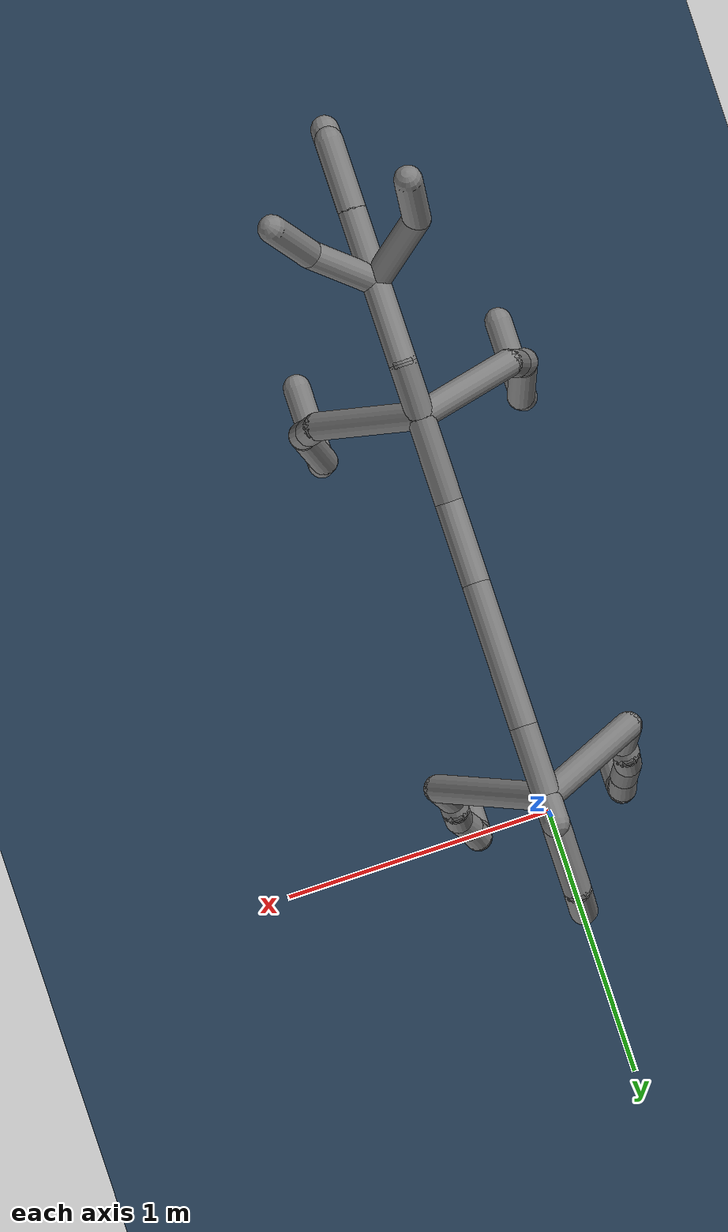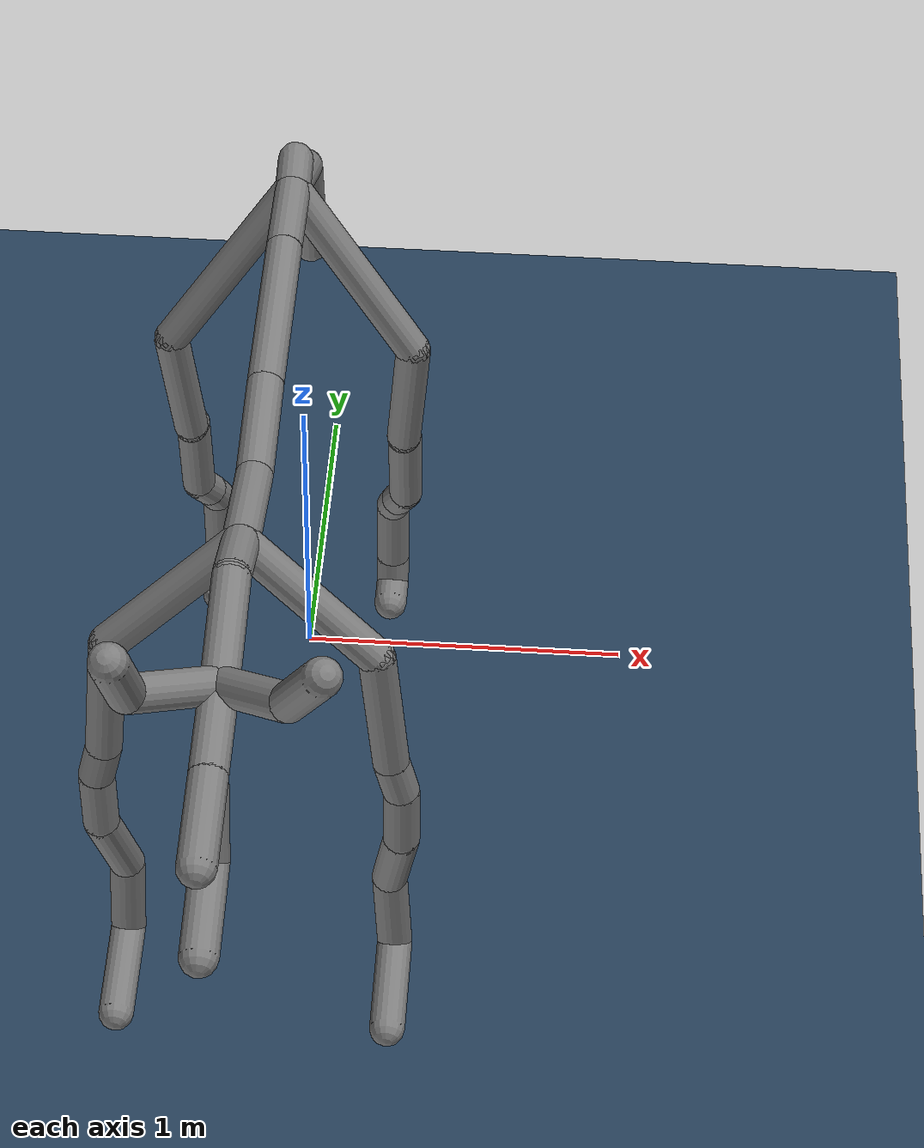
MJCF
<mujoco>
  <compiler meshdir="./mesh"/>
  <default>
    <motor ctrlrange="-1 1" ctrllimited="true"/>
    <joint type="hinge" axis="0 1 0" limited="true" damping=".05" armature=".2"/>
  </default>

  <worldbody>
    <camera name="cam0" pos="0 -7.5 3" xyaxes="1 0 0 0 0.3 1" mode="trackcom"/>
    <camera name="back" pos="-6 -1.5 2" xyaxes="0 -1 0 .5 0 2" mode="trackcom"/>
    <geom name="floor" size="0 0 .05" type="plane" material="grid" condim="3"/>
    <body name="Root" pos="0 0 2">
    <joint type="free"/>
      <geom type="capsule" name="Root geom" size="0.05" fromto="0 0 0 3.085051503148861e-08 -0.09467959403991699 -0.02700936794281006"/>
      <body name="Back" pos="3.085051503148861e-08 -0.09467959403991699 -0.02700936794281006">
        <geom type="capsule" name="Back geom" size="0.05" fromto="0 0 0 -1.1138939726151875e-07 0.34185147285461426 -0.19718897342681885"/>
        <body name="Tail" pos="-1.1138939726151875e-07 0.34185147285461426 -0.19718897342681885">
          <geom type="capsule" name="Tail geom" size="0.05" fromto="0 0 0 -2.9391060252237367e-08 0.09020018577575684 -0.3842000961303711"/>
        </body>
      </body>
      <body name="Back.001" pos="3.085051503148861e-08 -0.09467959403991699 -0.02700936794281006">
        <geom type="capsule" name="Back.001 geom" size="0.05" fromto="0 0 0 8.31115158916873e-08 -0.2550674378871918 0.0"/>
        <body name="Back.002" pos="8.31115158916873e-08 -0.2550674378871918 0.0">
          <geom type="capsule" name="Back.002 geom" size="0.05" fromto="0 0 0 1.6791362611456861e-07 -0.5153231620788574 -0.030207514762878418"/>
          <body name="Back.003" pos="1.6791362611456861e-07 -0.5153231620788574 -0.030207514762878418">
            <geom type="capsule" name="Back.003 geom" size="0.05" fromto="0 0 0 9.747995477482618e-08 -0.29916396737098694 -0.046318650245666504"/>
            <body name="Back.004" pos="9.747995477482618e-08 -0.29916396737098694 -0.046318650245666504">
              <geom type="capsule" name="Back.004 geom" size="0.05" fromto="0 0 0 1.0153232210541319e-07 -0.31160008907318115 0.07149171829223633"/>
              <body name="Neck" pos="1.0153232210541319e-07 -0.31160008907318115 0.07149171829223633">
                <geom type="capsule" name="Neck geom" size="0.05" fromto="0 0 0 6.131017471489031e-08 -0.18815964460372925 0.07149147987365723"/>
                <body name="Neck.001" pos="6.131017471489031e-08 -0.18815964460372925 0.07149147987365723">
                  <geom type="capsule" name="Neck.001 geom" size="0.05" fromto="0 0 0 9.759648378349084e-08 -0.29952114820480347 -0.07249855995178223"/>
                  <body name="Head" pos="9.759648378349084e-08 -0.29952114820480347 -0.07249855995178223">
                    <geom type="capsule" name="Head geom" size="0.05" fromto="0 0 0 8.355840463991626e-08 -0.25643885135650635 -0.03624916076660156"/>
                    <body name="Head.001" pos="8.355840463991626e-08 -0.25643885135650635 -0.03624916076660156">
                      <geom type="capsule" name="Head.001 geom" size="0.05" fromto="0 0 0 8.370631121579208e-08 -0.2568931579589844 -0.03287529945373535"/>
                    </body>
                    <body name="Jaw" pos="8.355840463991626e-08 -0.25643885135650635 -0.03624916076660156">
                      <geom type="capsule" name="Jaw geom" size="0.05" fromto="0 0 0 1.9439994503045455e-08 -0.0596613883972168 -0.2517307996749878"/>
                      <body name="Mouth" pos="1.9439994503045455e-08 -0.0596613883972168 -0.2517307996749878">
                        <geom type="capsule" name="Mouth geom" size="0.05" fromto="0 0 0 8.255682359958882e-08 -0.25336503982543945 -0.05228900909423828"/>
                      </body>
                    </body>
                  </body>
                  <body name="EarLeft" pos="9.759648378349084e-08 -0.29952114820480347 -0.07249855995178223">
                    <geom type="capsule" name="EarLeft geom" size="0.05" fromto="0 0 0 0.18498212099075317 -0.15190672874450684 0.12106740474700928"/>
                    <body name="EarLeft.001" pos="0.18498212099075317 -0.15190672874450684 0.12106740474700928">
                      <geom type="capsule" name="EarLeft.001 geom" size="0.05" fromto="0 0 0 0.09505319595336914 -0.11340522766113281 0.22373104095458984"/>
                    </body>
                  </body>
                  <body name="EarRight" pos="9.759648378349084e-08 -0.29952114820480347 -0.07249855995178223">
                    <geom type="capsule" name="EarRight geom" size="0.05" fromto="0 0 0 -0.20055094361305237 -0.15190696716308594 0.12106764316558838"/>
                    <body name="EarRight.001" pos="-0.20055094361305237 -0.15190696716308594 0.12106764316558838">
                      <geom type="capsule" name="EarRight.001 geom" size="0.05" fromto="0 0 0 -0.010949134826660156 -0.12613558769226074 0.24884462356567383"/>
                    </body>
                  </body>
                </body>
              </body>
              <body name="ShoulderLeft" pos="1.0153232210541319e-07 -0.31160008907318115 0.07149171829223633">

                <geom type="capsule" name="ShoulderLeft geom" size="0.05" fromto="0 0 0 0.34999996423721313 -0.08436477184295654 -0.31626665592193604"/>
                <body name="ArmLeft" pos="0.34999996423721313 -0.08436477184295654 -0.31626665592193604">
                  <joint axis="0 1 0" name="j3" range="-45 45"/>
                  <joint axis="1 0 0" name="j4" range="-45 45"/>
                  <geom type="capsule" name="ArmLeft geom" size="0.05" fromto="0 0 0 0.03542414307594299 1.1920928955078125e-07 -0.41018325090408325"/>
                  <body name="ArmLeft.001" pos="0.03542414307594299 1.1920928955078125e-07 -0.41018325090408325">
                    <geom type="capsule" name="ArmLeft.001 geom" size="0.05" fromto="0 0 0 0.02759292721748352 -1.1920928955078125e-07 -0.12002027034759521"/>
                    <body name="ArmLeft.002" pos="0.02759292721748352 -1.1920928955078125e-07 -0.12002027034759521">
                      <joint axis="1 0 0" name="k1" range="-45 45"/>
                      <geom type="capsule" name="ArmLeft.002 geom" size="0.05" fromto="0 0 0 5.960464477539063e-08 0.0 -0.1987273097038269"/>
                      <body name="ArmLeft.003" pos="5.960464477539063e-08 0.0 -0.1987273097038269">
                        <geom type="capsule" name="ArmLeft.003 geom" size="0.05" fromto="0 0 0 -0.04096323251724243 0.10052049160003662 -0.29688477516174316"/>
                        <body name="ArmLeft.004" pos="-0.04096323251724243 0.10052049160003662 -0.29688477516174316">
                          <geom type="capsule" name="ArmLeft.004 geom" size="0.05" fromto="0 0 0 0.013370126485824585 0.0 -0.29266488552093506"/>
                          <body name="ArmLeft.005" pos="0.013370126485824585 0.0 -0.29266488552093506">
                            <geom type="capsule" name="ArmLeft.005 geom" size="0.05" fromto="0 0 0 1.7881393432617188e-07 -0.2917100191116333 -0.02714446932077408"/>
                          </body>
                        </body>
                      </body>
                    </body>
                  </body>
                </body>
              </body>
              <body name="ShoulderRight" pos="1.0153232210541319e-07 -0.31160008907318115 0.07149171829223633">

                <geom type="capsule" name="ShoulderRight geom" size="0.05" fromto="0 0 0 -0.34894680976867676 -0.08443993330001831 -0.3162282705307007"/>
                <body name="ArmRight" pos="-0.34894680976867676 -0.08443993330001831 -0.3162282705307007">
                  <joint axis="0 1 0" name="j5" range="-45 45"/>
                  <joint axis="1 0 0" name="j6" range="-45 45"/>
                  <geom type="capsule" name="ArmRight geom" size="0.05" fromto="0 0 0 -0.03542408347129822 -2.384185791015625e-07 -0.4101829528808594"/>
                  <body name="ArmRight.001" pos="-0.03542408347129822 -2.384185791015625e-07 -0.4101829528808594">

                    <geom type="capsule" name="ArmRight.001 geom" size="0.05" fromto="0 0 0 -0.027592897415161133 1.7881393432617188e-07 -0.12002015113830566"/>
                    <body name="ArmRight.002" pos="-0.027592897415161133 1.7881393432617188e-07 -0.12002015113830566">
                      <joint axis="1 0 0" name="k2" range="-45 45"/>
                      <geom type="capsule" name="ArmRight.002 geom" size="0.05" fromto="0 0 0 -8.940696716308594e-08 0.0 -0.19872748851776123"/>
                      <body name="ArmRight.003" pos="-8.940696716308594e-08 0.0 -0.19872748851776123">
                        <geom type="capsule" name="ArmRight.003 geom" size="0.05" fromto="0 0 0 0.040963053703308105 0.1005205512046814 -0.296884685754776"/>
                        <body name="ArmRight.004" pos="0.040963053703308105 0.1005205512046814 -0.296884685754776">
                          <geom type="capsule" name="ArmRight.004 geom" size="0.05" fromto="0 0 0 -0.013370007276535034 -5.960464477539063e-08 -0.29266515374183655"/>
                          <body name="ArmRight.005" pos="-0.013370007276535034 -5.960464477539063e-08 -0.29266515374183655">
                            <geom type="capsule" name="ArmRight.005 geom" size="0.05" fromto="0 0 0 2.9802322387695312e-08 -0.29171013832092285 -0.027144506573677063"/>
                          </body>
                        </body>
                      </body>
                    </body>
                  </body>
                </body>
              </body>
            </body>
          </body>
        </body>
      </body>
      <body name="HipLeft" pos="3.085051503148861e-08 -0.09467959403991699 -0.02700936794281006">

        <geom type="capsule" name="HipLeft geom" size="0.05" fromto="0 0 0 0.34999996423721313 -0.13724637031555176 -0.4646819829940796"/>
        <body name="FootLeft" pos="0.34999996423721313 -0.13724637031555176 -0.4646819829940796">
          <joint axis="0 1 0" name="j7" range="-45 45"/>
          <joint axis="1 0 0" name="j8" range="-45 45"/>
          <site name="footleft" pos="0 0 0"/>
          <geom type="capsule" name="FootLeft geom" size="0.05" fromto="0 0 0 -0.032048940658569336 0.06055033206939697 -0.40792691707611084"/>
          <body name="FootLeft.001" pos="-0.032048940658569336 0.06055033206939697 -0.40792691707611084">
            <geom type="capsule" name="FootLeft.001 geom" size="0.05" fromto="0 0 0 2.9802322387695312e-08 0.0391806960105896 -0.021956145763397217"/>
            <body name="FootLeft.002" pos="2.9802322387695312e-08 0.0391806960105896 -0.021956145763397217">
              <joint axis="1 0 0" name="k3" range="-45 45"/>
              <geom type="capsule" name="FootLeft.002 geom" size="0.05" fromto="0 0 0 1.1920928955078125e-07 0.041610658168792725 -0.29528218507766724"/>
              <body name="FootLeft.003" pos="1.1920928955078125e-07 0.041610658168792725 -0.29528218507766724">
                <geom type="capsule" name="FootLeft.003 geom" size="0.05" fromto="0 0 0 -0.02862563729286194 0.04275554418563843 -0.07143694162368774"/>
                <body name="FootLeft.004" pos="-0.02862563729286194 0.04275554418563843 -0.07143694162368774">
                  <geom type="capsule" name="FootLeft.004 geom" size="0.05" fromto="0 0 0 -0.017746388912200928 0.042755842208862305 -0.07143691182136536"/>
                  <body name="FootLeft.005" pos="-0.017746388912200928 0.042755842208862305 -0.07143691182136536">
                    <geom type="capsule" name="FootLeft.005 geom" size="0.05" fromto="0 0 0 -5.960464477539063e-08 -5.960464477539063e-08 -0.22579798102378845"/>
                    <body name="FootLeft.006" pos="-5.960464477539063e-08 -5.960464477539063e-08 -0.22579798102378845">
                      <geom type="capsule" name="FootLeft.006 geom" size="0.05" fromto="0 0 0 1.1920928955078125e-07 -0.018956780433654785 -0.09571106731891632"/>
                      <body name="FootLeft.007" pos="1.1920928955078125e-07 -0.018956780433654785 -0.09571106731891632">
                        <geom type="capsule" name="FootLeft.007 geom" size="0.05" fromto="0 0 0 2.9802322387695312e-08 -0.09757024049758911 -1.4901161193847656e-08"/>
                      </body>
                    </body>
                  </body>
                </body>
              </body>
            </body>
          </body>
        </body>
      </body>
      <body name="HipRight" pos="3.085051503148861e-08 -0.09467959403991699 -0.02700936794281006">

        <geom type="capsule" name="HipRight geom" size="0.05" fromto="0 0 0 -0.34999993443489075 -0.13724714517593384 -0.46466493606567383"/>
        <body name="FootRight" pos="-0.34999993443489075 -0.13724714517593384 -0.46466493606567383">
          <joint axis="0 1 0" name="j1" range="-45 45"/>
          <joint axis="1 0 0" name="j2" range="-45 45"/>
          <site name="footright" pos="0 0 0"/>
          <geom type="capsule" name="FootRight geom" size="0.05" fromto="0 0 0 0.032048821449279785 0.06055039167404175 -0.40792691707611084"/>
          <body name="FootRight.001" pos="0.032048821449279785 0.06055039167404175 -0.40792691707611084">
            <geom type="capsule" name="FootRight.001 geom" size="0.05" fromto="0 0 0 1.1920928955078125e-07 0.039180636405944824 -0.02195608615875244"/>
            <body name="FootRight.002" pos="1.1920928955078125e-07 0.039180636405944824 -0.02195608615875244">
              <joint axis="1 0 0" name="k4" range="-45 45"/>
              <geom type="capsule" name="FootRight.002 geom" size="0.05" fromto="0 0 0 1.4901161193847656e-07 0.0416107177734375 -0.295282244682312"/>
              <body name="FootRight.003" pos="1.4901161193847656e-07 0.0416107177734375 -0.295282244682312">
                <geom type="capsule" name="FootRight.003 geom" size="0.05" fromto="0 0 0 0.02862563729286194 0.042755842208862305 -0.07143697142601013"/>
                <body name="FootRight.004" pos="0.02862563729286194 0.042755842208862305 -0.07143697142601013">
                  <geom type="capsule" name="FootRight.004 geom" size="0.05" fromto="0 0 0 0.0177462100982666 0.042755722999572754 -0.07143694162368774"/>
                  <body name="FootRight.005" pos="0.0177462100982666 0.042755722999572754 -0.07143694162368774">
                    <geom type="capsule" name="FootRight.005 geom" size="0.05" fromto="0 0 0 2.086162567138672e-07 -2.980232238769531e-07 -0.22579790651798248"/>
                    <body name="FootRight.006" pos="2.086162567138672e-07 -2.980232238769531e-07 -0.22579790651798248">
                      <geom type="capsule" name="FootRight.006 geom" size="0.05" fromto="0 0 0 -1.7881393432617188e-07 -0.018956661224365234 -0.09571109712123871"/>
                      <body name="FootRight.007" pos="-1.7881393432617188e-07 -0.018956661224365234 -0.09571109712123871">
                        <geom type="capsule" name="FootRight.007 geom" size="0.05" fromto="0 0 0 5.960464477539063e-08 -0.09757035970687866 0.0"/>
                      </body>
                    </body>
                  </body>
                </body>
              </body>
            </body>
          </body>
        </body>
      </body>
    </body>
  </worldbody>
  <actuator>
    <motor name="p1" joint="j1" gear="100"/>
    <motor name="p2" joint="j2" gear="100"/>
    <motor name="p3" joint="j3" gear="100"/>
    <motor name="p4" joint="j4" gear="100"/>
    <motor name="p5" joint="j5" gear="100"/>
    <motor name="p6" joint="j6" gear="100"/>
    <motor name="p7" joint="j7" gear="100"/>
    <motor name="p8" joint="j8" gear="100"/>
  </actuator>

  <sensor>
    <subtreelinvel name="Back_subtreelinvel" body="Back"/>
    <touch name="footlefttouch" site="footleft"/>
    <touch name="footrighttouch" site="footright"/>
  </sensor>

<asset>
<texture name="grid" type="2d" builtin="checker" width="512" height="512" rgb1=".1 .2 .3" rgb2=".2 .3 .4"/>
<material name="grid" texture="grid" texrepeat="1 1" texuniform="true" reflectance=".2"/>
  </asset>
</mujoco>
